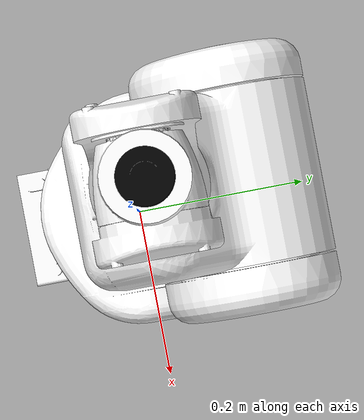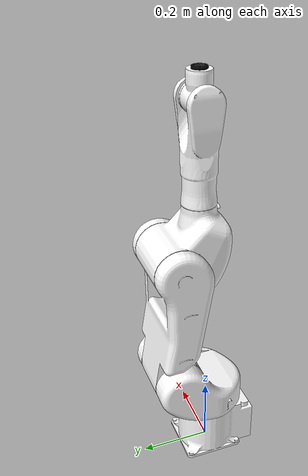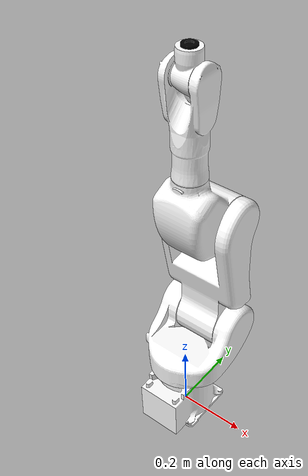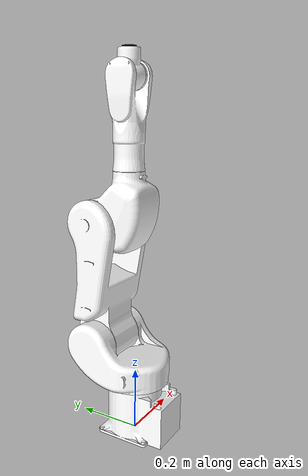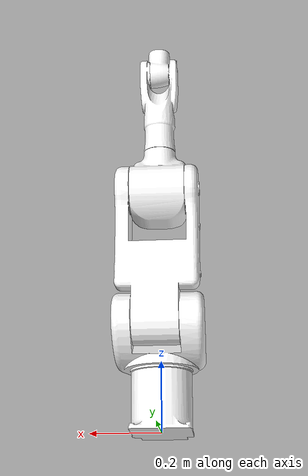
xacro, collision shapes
<?xml version="1.0" ?>
<robot name="khi_rs005l" xmlns:xacro="http://ros.org/wiki/xacro">
  <xacro:include filename="$(find mobile_manipulator_description)/urdf/khi_rs/rs005l_macro.xacro"/>

  <!--xacro:include filename="$(find realsense_gazebo_plugin)/urdf/khi_rs/d435_simulation.xacro"/-->

  <!-- Sensor kullanilmayacagi zaman commentlenebilir -->

  <!-- instantiate rs005l -->
  <xacro:khi_rs005l prefix="" />

  <!-- Fix rs005l to world -->

  <link name="world"/>

  <joint name="world2base" type="fixed">
    <parent link="world"/>
    <child link="base_link"/>
    <origin rpy="0 0 0" xyz="0 0 0"/>
  </joint>
</robot>

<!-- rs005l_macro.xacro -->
<robot xmlns:xacro="http://ros.org/wiki/xacro">
  <xacro:macro name="khi_rs005l" params="prefix">

    <xacro:include filename="$(find mobile_manipulator_description)/urdf/khi_rs/rs.transmission.xacro" />
    <xacro:include filename="$(find mobile_manipulator_description)/urdf/khi_rs/common.gazebo.xacro" />

    <!-- link rviz colors -->
    <material name="White">
      <color rgba="1 1 1 1"/>
    </material>

    <material name="Black">
      <color rgba="0 0 0 1"/>
    </material>

    <!-- DH parameters -->
    <xacro:property name="dh_j1_j2_roty" value="${radians(90)}"/>
    <xacro:property name="dh_j3_j4_roty" value="${radians(90)}"/>
    <xacro:property name="dh_j4_j5_roty" value="${radians(90)}"/>
    <xacro:property name="dh_j5_j6_roty" value="${radians(90)}"/>

    <!-- link mass [kg] -->
    <xacro:property name="j0_mass" value="5.910"/>
    <xacro:property name="j1_mass" value="10.395"/>
    <xacro:property name="j2_mass" value="8.788"/>
    <xacro:property name="j3_mass" value="7.575"/>
    <xacro:property name="j4_mass" value="2.679"/>
    <xacro:property name="j5_mass" value="1.028"/>
    <xacro:property name="j6_mass" value="0.625"/>

    <!-- link lengths [m] -->
    <xacro:property name="j0_length" value="0.295"/>
    <xacro:property name="j1_length" value="0.105"/>
    <xacro:property name="j2_length" value="0.380"/>
    <xacro:property name="j31_length" value="0.15"/>
    <xacro:property name="j32_length" value="0.080"/>
    <xacro:property name="j4_length" value="0.410"/>
    <xacro:property name="j5_length" value="0.078"/>

    <!-- joint limits [rad] -->
    <xacro:property name="j1_lower_limit" value="${radians(-180)}"/>
    <xacro:property name="j1_upper_limit" value="${radians( 180)}"/>
    <xacro:property name="j2_lower_limit" value="${radians( -80)}"/>
    <xacro:property name="j2_upper_limit" value="${radians( 135)}"/>
    <xacro:property name="j3_lower_limit" value="${radians(-172)}"/>
    <xacro:property name="j3_upper_limit" value="${radians( 118)}"/>
    <xacro:property name="j4_lower_limit" value="${radians(-360)}"/>
    <xacro:property name="j4_upper_limit" value="${radians( 360)}"/>
    <xacro:property name="j5_lower_limit" value="${radians(-145)}"/>
    <xacro:property name="j5_upper_limit" value="${radians( 145)}"/>
    <xacro:property name="j6_lower_limit" value="${radians(-360)}"/>
    <xacro:property name="j6_upper_limit" value="${radians( 360)}"/>

    <!-- joint verocity limits [rad/s] -->
    <xacro:property name="j1_velocity_limit" value="${radians( 300)}"/>
    <xacro:property name="j2_velocity_limit" value="${radians( 300)}"/>
    <xacro:property name="j3_velocity_limit" value="${radians( 300)}"/>
    <xacro:property name="j4_velocity_limit" value="${radians( 460)}"/>
    <xacro:property name="j5_velocity_limit" value="${radians( 460)}"/>
    <xacro:property name="j6_velocity_limit" value="${radians( 740)}"/>

    <!-- link inertial(TODO : set correct link inertial )-->
    <xacro:macro name="default_inertial" params="mass">
      <inertial>
        <mass value="${mass}" />
        <inertia ixx="1.0" ixy="0.0" ixz="0.0" iyy="1.0" iyz="0.0" izz="1.0" />
      </inertial>
    </xacro:macro>

    <!-- rs007l start -->

    <!-- Link 0 -->
    <link name="${prefix}base_link">
      <visual>
        <geometry>
          <mesh filename="package://mobile_manipulator_description/meshes/khi_rs/RS005L_J0.STL"/>
        </geometry>
        <material name="White"/>
        <origin rpy="0 0 0" xyz="0 0 0"/>
      </visual>
      <collision>
        <geometry>
          <mesh filename="package://mobile_manipulator_description/meshes/khi_rs/RS005L_J0.STL"/>
        </geometry>
        <material name="White"/>
        <origin rpy="0 0 0" xyz="0 0 0"/>
      </collision>
      <xacro:default_inertial mass="${j0_mass}"/>
    </link>

    <!-- Link 1 -->
    <joint name="${prefix}joint1" type="revolute">
      <axis xyz="0 0 -1" rpy="0 0 0" />
      <limit effort="1000.0" lower="${j1_lower_limit}" upper="${j1_upper_limit}" velocity="${j1_velocity_limit}"/>
      <origin xyz="0 0 ${j0_length}" rpy="0 0 0" />
      <parent link="${prefix}base_link"/>
      <child link="${prefix}link1"/>
      <dynamics damping="0.0" friction="0.0"/>
    </joint>

    <link name="${prefix}link1">
      <visual>
        <geometry>
          <mesh filename="package://mobile_manipulator_description/meshes/khi_rs/RS005L_J1.STL"/>
        </geometry>
        <material name="White"/>
        <origin rpy="0 0 0" xyz="0 0 0"/>
      </visual>
      <collision>
        <geometry>
          <mesh filename="package://mobile_manipulator_description/meshes/khi_rs/RS005L_J1.STL"/>
        </geometry>
        <material name="White"/>
        <origin rpy="0 0 0" xyz="0 0 0"/>
      </collision>
      <xacro:default_inertial mass="${j1_mass}"/>
    </link>

    <!-- Link 2 -->
    <joint name="${prefix}joint2" type="revolute">
      <axis xyz="0 0 1" rpy="0 0 0" />
      <limit effort="1000.0" lower="${j2_lower_limit}" upper="${j2_upper_limit}" velocity="${j2_velocity_limit}"/>
      <origin xyz="0 ${j1_length} 0" rpy="0 ${dh_j1_j2_roty*-1} 0" />
      <parent link="${prefix}link1"/>
      <child link="${prefix}link2"/>
      <dynamics damping="0.0" friction="0.0"/>
    </joint>

    <link name="${prefix}link2">
      <visual>
        <geometry>
          <mesh filename="package://mobile_manipulator_description/meshes/khi_rs/RS005L_J2.STL"/>
        </geometry>
        <material name="White"/>
        <origin xyz="0 0 0" rpy="0 0 0"/>
      </visual>
      <collision>
        <geometry>
          <mesh filename="package://mobile_manipulator_description/meshes/khi_rs/RS005L_J2.STL"/>
        </geometry>
        <material name="White"/>
        <origin xyz="0 0 0" rpy="0 0 0"/>
      </collision>
      <xacro:default_inertial mass="0${j2_mass}"/>
    </link>

    <!-- Link 3 -->
    <joint name="${prefix}joint3" type="revolute">
      <axis xyz="0 0 -1" rpy="0 0 0" />
      <limit effort="1000.0" lower="${j3_lower_limit}" upper="${j3_upper_limit}" velocity="${j3_velocity_limit}"/>
      <origin xyz="${j2_length} 0 0" rpy="0 0 0" />
      <parent link="${prefix}link2"/>
      <child link="${prefix}link3"/>
      <dynamics damping="0.0" friction="0.0"/>
    </joint>

    <link name="${prefix}link3">
      <visual>
        <geometry>
          <mesh filename="package://mobile_manipulator_description/meshes/khi_rs/RS005L_J3.STL"/>
        </geometry>
        <material name="White"/>
        <origin xyz="0 0 0" rpy="0 0 0"/>
      </visual>
      <collision>
        <geometry>
          <mesh filename="package://mobile_manipulator_description/meshes/khi_rs/RS005L_J3.STL"/>
        </geometry>
        <material name="White"/>
        <origin xyz="0 0 0" rpy="0 0 0"/>
      </collision>
      <xacro:default_inertial mass="${j3_mass}"/>
    </link>

    <!-- Link 4 -->
    <joint name="${prefix}joint4" type="revolute">
      <axis xyz="0 0 1" rpy="0 0 0" />
      <limit effort="1000.0" lower="${j4_lower_limit}" upper="${j4_upper_limit}" velocity="${j4_velocity_limit}"/>
      <origin xyz="${j31_length} ${j32_length*-1} 0" rpy="0 ${dh_j3_j4_roty} 0" />
      <parent link="${prefix}link3"/>
      <child link="${prefix}link4"/>
      <dynamics damping="0.0" friction="0.0"/>
    </joint>

    <link name="${prefix}link4">
      <visual>
        <geometry>
          <mesh filename="package://mobile_manipulator_description/meshes/khi_rs/RS005L_J4.STL"/>
        </geometry>
        <material name="White"/>
        <origin xyz="0 0 0" rpy="0 0 0"/>
      </visual>
      <collision>
        <geometry>
          <mesh filename="package://mobile_manipulator_description/meshes/khi_rs/RS005L_J4.STL"/>
        </geometry>
        <material name="White"/>
        <origin xyz="0 0 0" rpy="0 0 0"/>
      </collision>
      <xacro:default_inertial mass="${j4_mass}"/>
    </link>

    <!-- Link 5 -->
    <joint name="${prefix}joint5" type="revolute">
      <axis xyz="0 0 -1" rpy="0 0 0" />
      <limit effort="1000.0" lower="${j5_lower_limit}" upper="${j5_upper_limit}" velocity="${j5_velocity_limit}"/>
      <origin xyz="0 0 0.26" rpy="0 ${dh_j4_j5_roty*-1} 0" />
      <parent link="${prefix}link4"/>
      <child link="${prefix}link5"/>
      <dynamics damping="0.0" friction="0.0"/>
    </joint>

    <link name="${prefix}link5">
      <visual>
        <geometry>
          <mesh filename="package://mobile_manipulator_description/meshes/khi_rs/RS005L_J5.STL"/>
        </geometry>
        <material name="White"/>
        <origin xyz="0 0 0" rpy="0 0 0"/>
      </visual>
      <collision>
        <geometry>
          <mesh filename="package://mobile_manipulator_description/meshes/khi_rs/RS005L_J5.STL"/>
        </geometry>
        <material name="White"/>
        <origin xyz="0 0 0" rpy="0 0 0"/>
      </collision>
      <xacro:default_inertial mass="${j5_mass}"/>
    </link>

    <!-- Link 6 -->
    <joint name="${prefix}joint6" type="revolute">
      <axis xyz="0 0 1" rpy="0 0 0" />
      <limit effort="1000.0" lower="${j6_lower_limit}" upper="${j6_upper_limit}" velocity="${j6_velocity_limit}"/>
      <origin xyz="${j5_length} 0 0" rpy="0 ${dh_j5_j6_roty} 0" />
      <parent link="${prefix}link5"/>
      <child link="${prefix}link6"/>
      <dynamics damping="0.0" friction="0.0"/>
    </joint>

    <link name="${prefix}link6">
      <visual>
        <geometry>
          <mesh filename="package://mobile_manipulator_description/meshes/khi_rs/RS005L_J6.STL"/>
        </geometry>
        <material name="Black"/>
        <origin xyz="0 0 0" rpy="0 0 0"/>
      </visual>
      <collision>
        <geometry>
          <mesh filename="package://mobile_manipulator_description/meshes/khi_rs/RS005L_J6.STL"/>
        </geometry>
        <material name="Black"/>
        <origin xyz="0 0 0" rpy="0 0 0"/>
      </collision>
      <xacro:default_inertial mass="${j6_mass}"/>
    </link>

	    <link name="camera_link">
		    <visual>
			<origin xyz="-0.03 0 0" rpy="-1.57 0 -1.57"/>
			<geometry>
			    <mesh filename="package://mobile_manipulator_description/meshes/camera.stl" scale="0.001 0.001 0.001"/>
			</geometry>
		    </visual>
	    </link>

	    <joint name="camera_joint" type="fixed">
			<origin xyz="0.0 0.0 0.03" rpy="-1.570796 -1.570796 0"/>
			<parent link="link6"/>
			<child link="camera_link"/>
	    </joint>

	    <joint name="camera_rgb_joint" type="fixed">
			<origin xyz="0 0 0" rpy="-1.570796 0 -1.570796"/>
			<parent link="camera_link"/>
			<child link="camera_rgb_frame"/>
	    </joint>

	    <link name="camera_rgb_frame"/>

	    <joint name="camera_rgb_optic_joint" type="fixed">
			<origin xyz="0 0 0" rpy="0 0 0"/>
			<parent link="camera_rgb_frame"/>
			<child link="camera_rgb_optic_frame"/>
	    </joint>

   	 <link name="camera_rgb_optic_frame"/>

	  <gazebo reference="camera_link">
	    <sensor type="depth" name="Realsense_Camera_Depth">
	      <always_on>true</always_on>
	      <update_rate>10.0</update_rate>
			<camera>
				<horizontal_fov>1.3962634</horizontal_fov>
				<image>
					<width>640</width>
					<height>480</height>
					<format>R8G8B8</format>
				</image>
				<clip>
					<near>0.01</near>
					<far>5</far>
				</clip>
			</camera>

		<plugin name="depth_camera_plugin" filename="libgazebo_ros_openni_kinect.so">
			  <alwaysOn>true</alwaysOn>
			  <updateRate>10.0</updateRate>
			  <cameraName>camera</cameraName>
			  <imageTopicName>image_raw</imageTopicName>
			  <cameraInfoTopicName>camera_info</cameraInfoTopicName>
			  <depthImageTopicName>depth_image_raw</depthImageTopicName>
			  <depthImageCameraInfoTopicName>depth_camera_info</depthImageCameraInfoTopicName>
			  <pointCloudTopicName>points</pointCloudTopicName>
			  <frameName>camera_rgb_optic_frame</frameName>
			  <pointCloudCutoff>0.0</pointCloudCutoff>
			  <distortionK1>0.00000001</distortionK1>
			  <distortionK2>0.00000001</distortionK2>
			  <distortionK3>0.00000001</distortionK3>
			  <distortionT1>0.00000001</distortionT1>
			  <distortionT2>0.00000001</distortionT2>
			  <CxPrime>0</CxPrime>
			  <Cx>0</Cx>
			  <Cy>0</Cy>
			  <focalLength>0</focalLength>
			  <hackBaseline>0</hackBaseline>
		</plugin>
	    </sensor>
	  </gazebo>

  </xacro:macro>
</robot>
